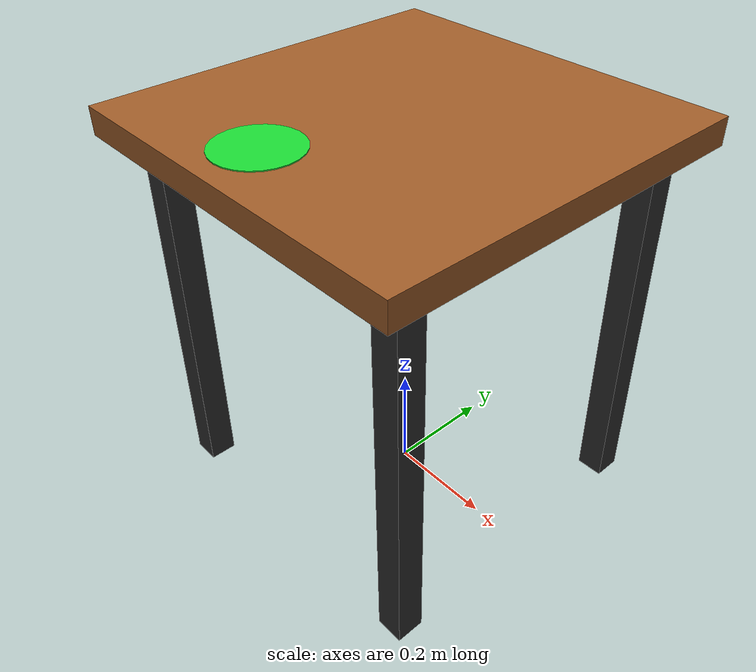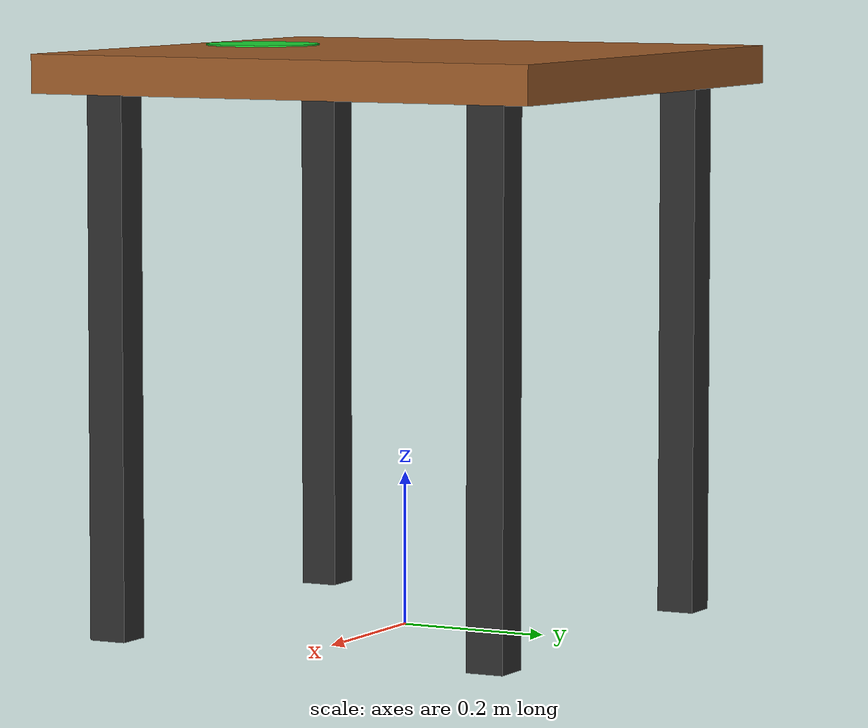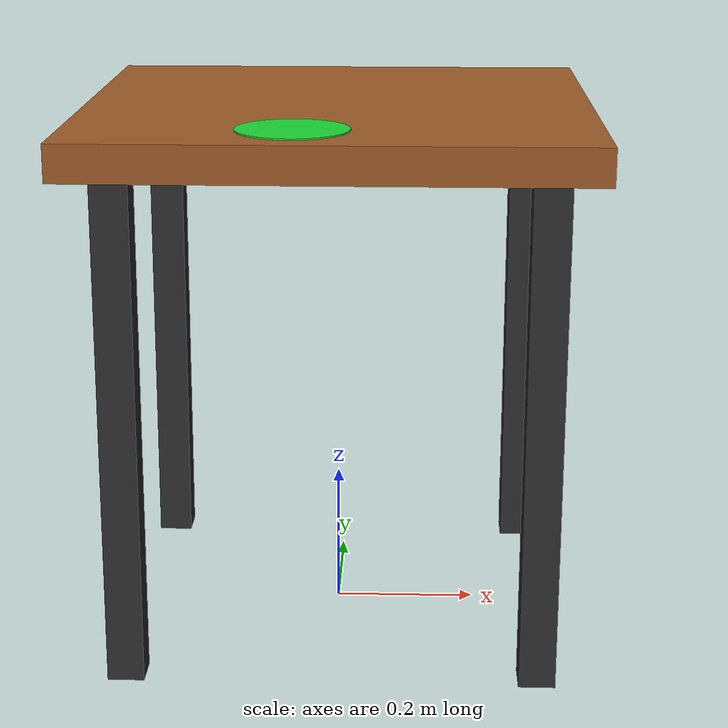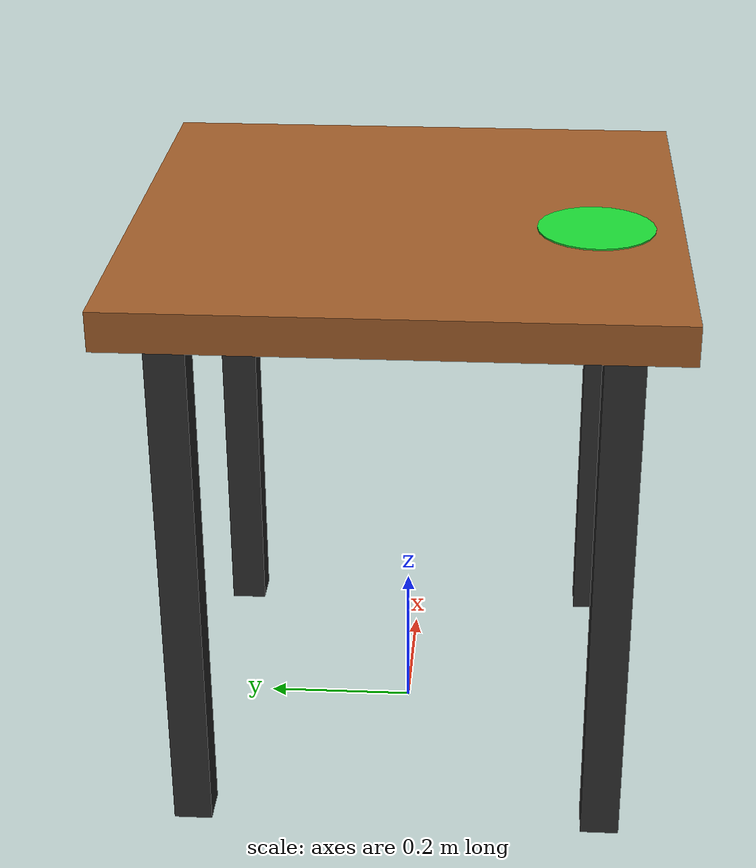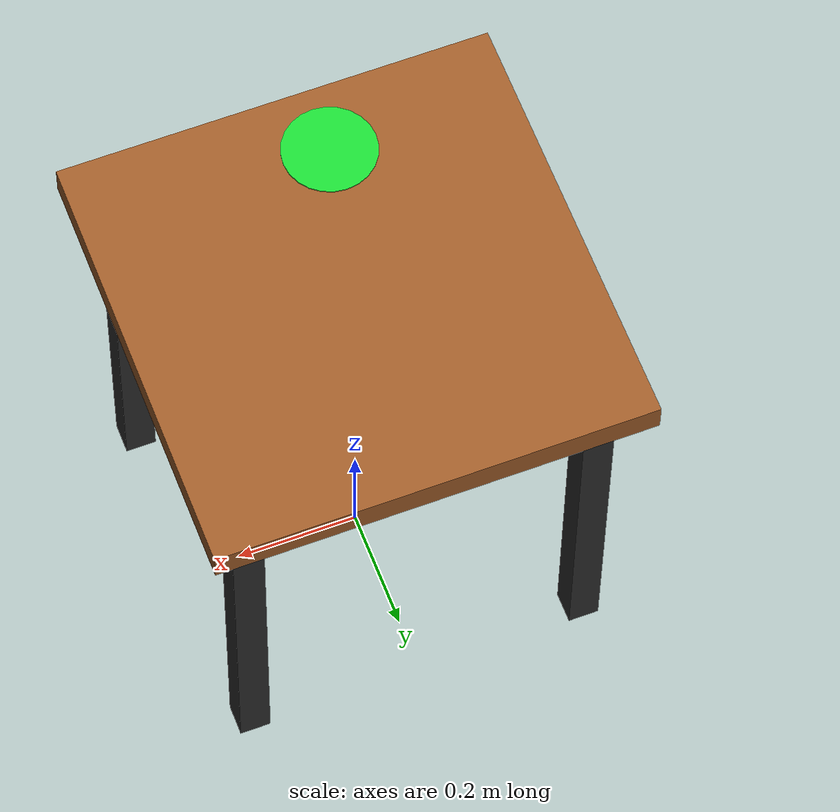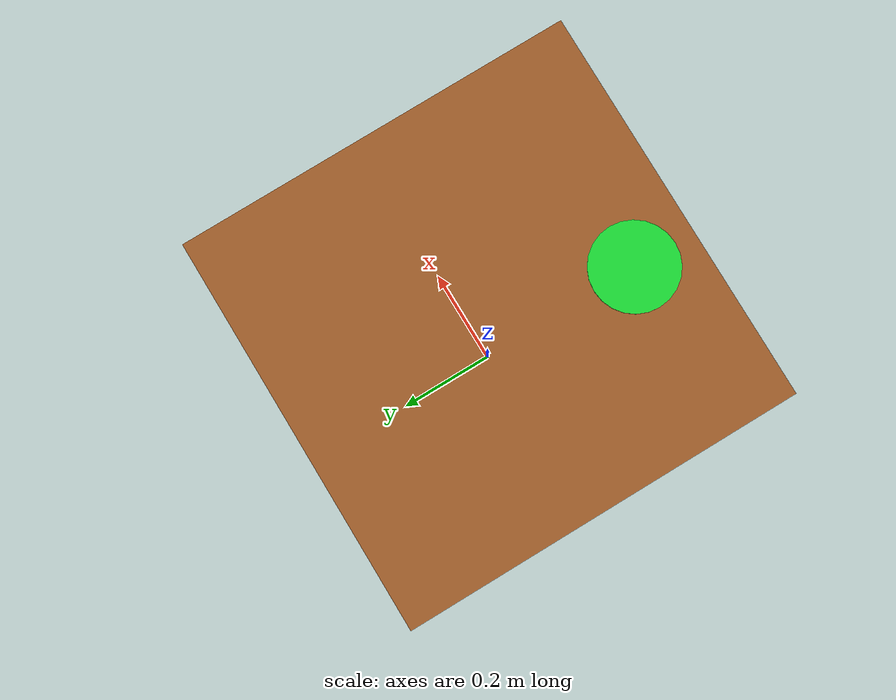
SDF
<?xml version="1.0"?>
<sdf version="1.7">
  <model name="assignment_table">
    <static>true</static>
    <link name="table">
      <collision name="top_collision">
        <pose>0 0 0.725 0 0 0</pose>
        <geometry>
          <box>
            <size>0.70 0.70 0.05</size>
          </box>
        </geometry>
      </collision>
      <visual name="top_visual">
        <pose>0 0 0.725 0 0 0</pose>
        <geometry>
          <box>
            <size>0.70 0.70 0.05</size>
          </box>
        </geometry>
        <material>
          <ambient>0.42 0.24 0.10 1</ambient>
          <diffuse>0.62 0.36 0.16 1</diffuse>
          <specular>0.10 0.10 0.10 1</specular>
        </material>
      </visual>
      <visual name="place_target">
        <pose>-0.05 -0.24 0.751 0 0 0</pose>
        <geometry>
          <cylinder>
            <radius>0.075</radius>
            <length>0.002</length>
          </cylinder>
        </geometry>
        <material>
          <ambient>0.05 0.55 0.12 1</ambient>
          <diffuse>0.10 0.85 0.20 1</diffuse>
          <specular>0.05 0.05 0.05 1</specular>
        </material>
      </visual>
      <collision name="front_left_leg_collision">
        <pose>0.28 0.27 0.35 0 0 0</pose>
        <geometry><box><size>0.05 0.05 0.70</size></box></geometry>
      </collision>
      <visual name="front_left_leg_visual">
        <pose>0.28 0.27 0.35 0 0 0</pose>
        <geometry><box><size>0.05 0.05 0.70</size></box></geometry>
        <material><diffuse>0.18 0.18 0.18 1</diffuse></material>
      </visual>
      <collision name="front_right_leg_collision">
        <pose>0.28 -0.27 0.35 0 0 0</pose>
        <geometry><box><size>0.05 0.05 0.70</size></box></geometry>
      </collision>
      <visual name="front_right_leg_visual">
        <pose>0.28 -0.27 0.35 0 0 0</pose>
        <geometry><box><size>0.05 0.05 0.70</size></box></geometry>
        <material><diffuse>0.18 0.18 0.18 1</diffuse></material>
      </visual>
      <collision name="back_left_leg_collision">
        <pose>-0.28 0.27 0.35 0 0 0</pose>
        <geometry><box><size>0.05 0.05 0.70</size></box></geometry>
      </collision>
      <visual name="back_left_leg_visual">
        <pose>-0.28 0.27 0.35 0 0 0</pose>
        <geometry><box><size>0.05 0.05 0.70</size></box></geometry>
        <material><diffuse>0.18 0.18 0.18 1</diffuse></material>
      </visual>
      <collision name="back_right_leg_collision">
        <pose>-0.28 -0.27 0.35 0 0 0</pose>
        <geometry><box><size>0.05 0.05 0.70</size></box></geometry>
      </collision>
      <visual name="back_right_leg_visual">
        <pose>-0.28 -0.27 0.35 0 0 0</pose>
        <geometry><box><size>0.05 0.05 0.70</size></box></geometry>
        <material><diffuse>0.18 0.18 0.18 1</diffuse></material>
      </visual>
    </link>
  </model>
</sdf>
